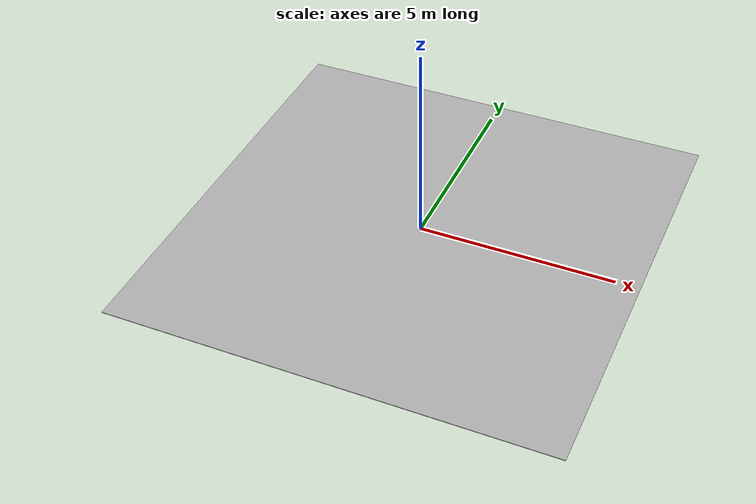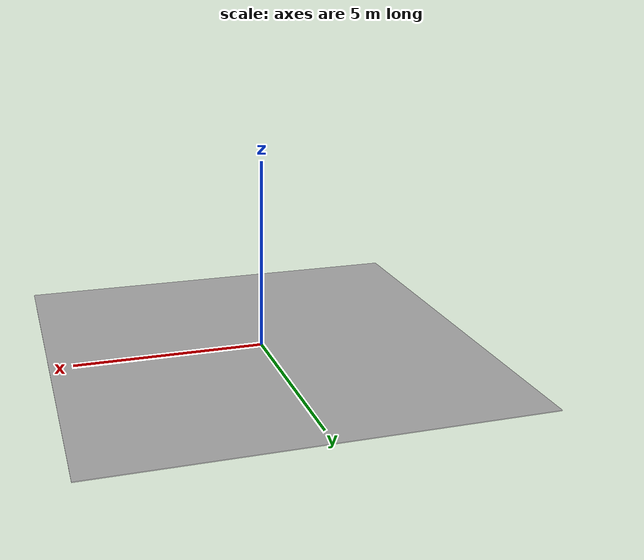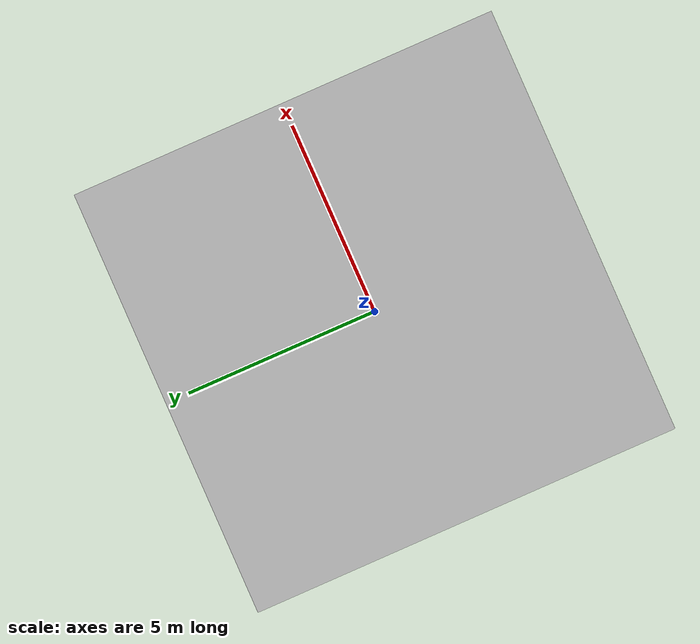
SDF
<?xml version="1.0" ?>
<sdf version='1.4'>
  <model name="test_plane">
      <static>1</static>
      <link name='link'>
        <visual name='visual'>
          <geometry>
            <mesh>
              <uri>model://test_plane/meshes/test_plane_v2.dae</uri>
              <scale>1.0 1.0 1.0</scale>
            </mesh>
          </geometry>
        </visual>

      </link>
  </model>
</sdf>
